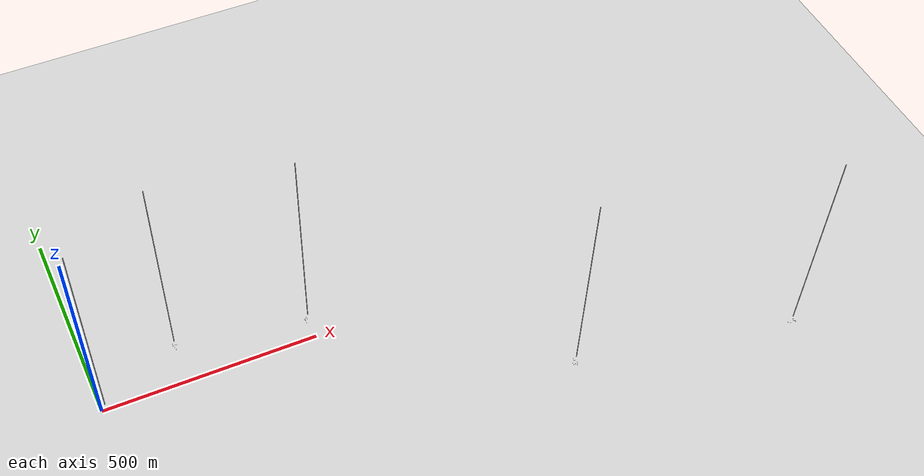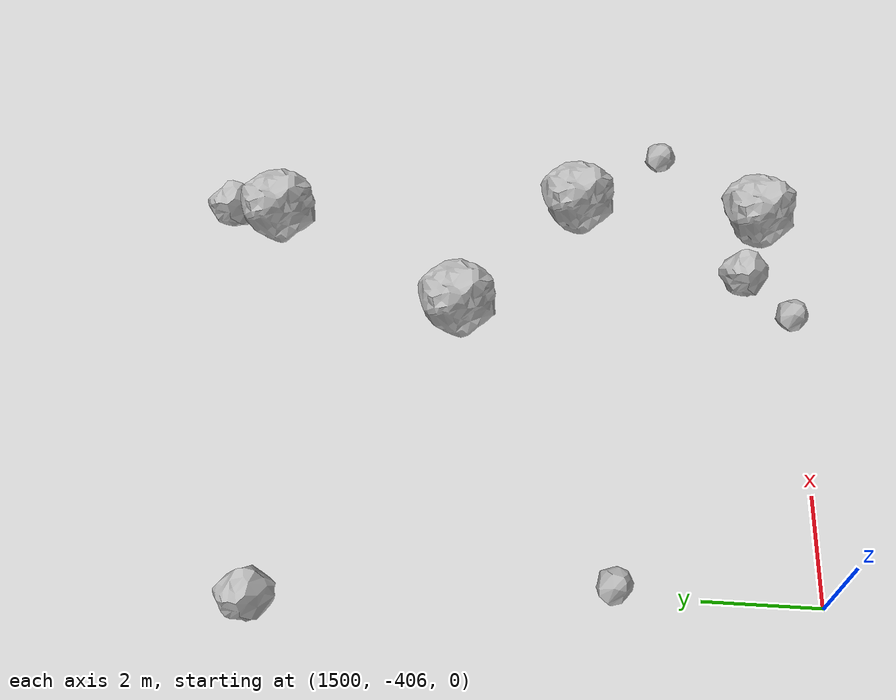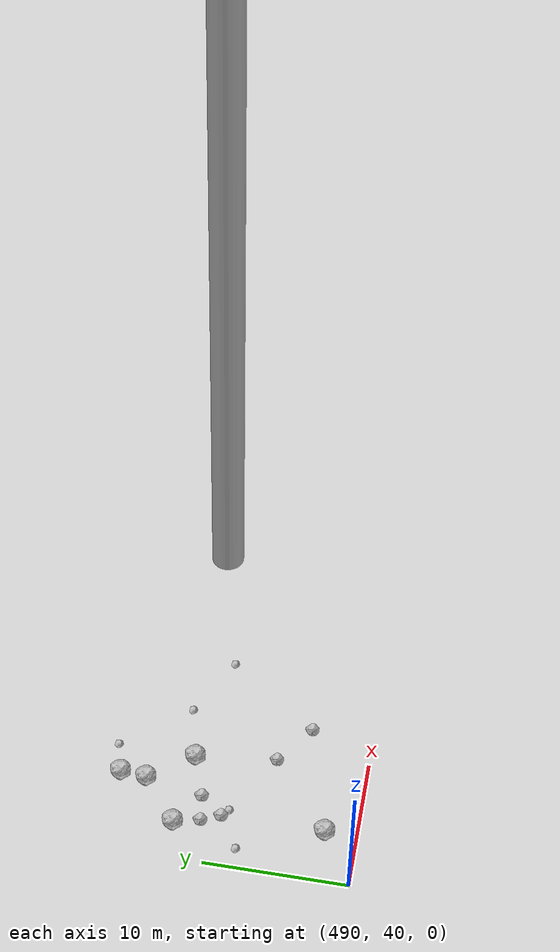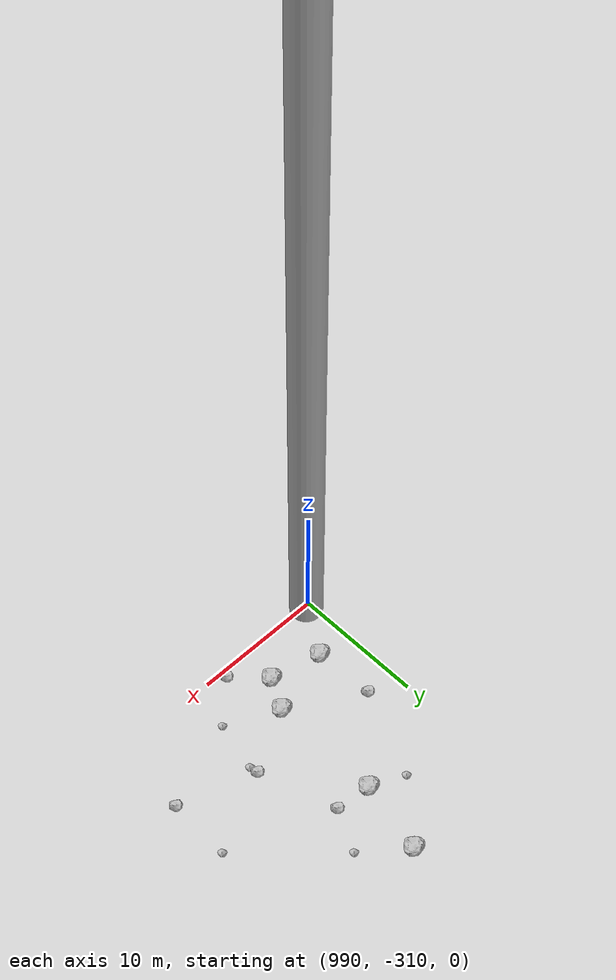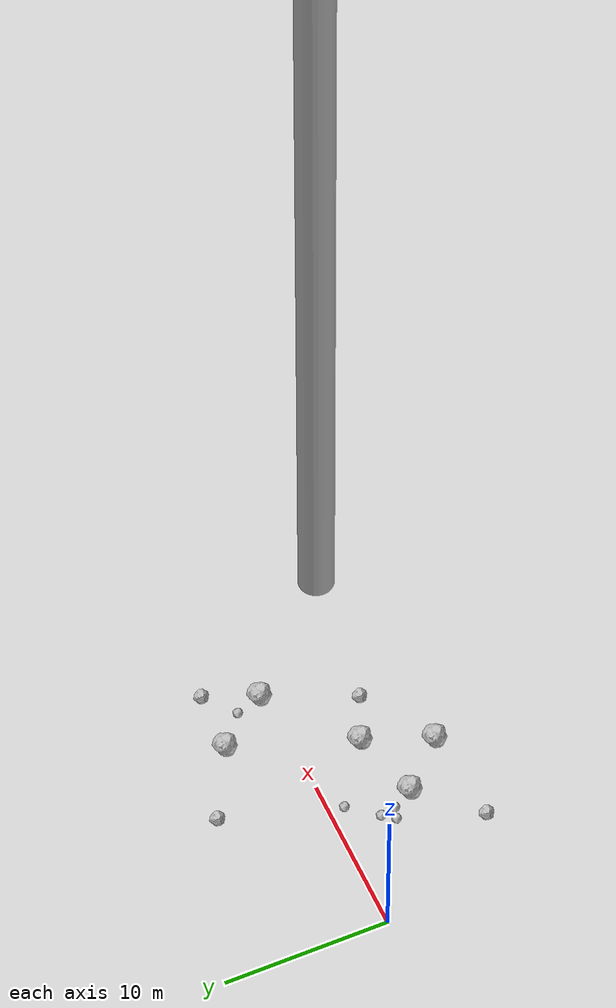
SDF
<?xml version="1.0" ?>
<sdf version="1.6">
  <world name="default">

    <include>
      <uri>model://custom_ground</uri>
    </include>

    <include>
      <uri>model://sun</uri>
    </include>

    <spherical_coordinates>
      <surface_model>EARTH_WGS84</surface_model>
      <latitude_deg>38.161479</latitude_deg>
      <longitude_deg>-122.454630</longitude_deg>
      <elevation>488.0</elevation>
      <heading_deg>90</heading_deg>
    </spherical_coordinates>

    <model name="rock1_0_0">
      <include>
        <uri>model://rock1</uri>
        <pose>14.70755801932712 3.8091425732119184 0.5 0 0 0</pose>
      </include>
    </model>
    <model name="rock1_0_1">
      <include>
        <uri>model://rock1</uri>
        <pose>10.337254770042204 -7.653851566704679 0.5 0 0 0</pose>
      </include>
    </model>
    <model name="rock1_0_2">
      <include>
        <uri>model://rock1</uri>
        <pose>7.618650321289402 -4.815803580699802 0.5 0 0 0</pose>
      </include>
    </model>
    <model name="rock1_0_3">
      <include>
        <uri>model://rock1</uri>
        <pose>11.980936104275987 -3.609219413386664 0.5 0 0 0</pose>
      </include>
    </model>
    <model name="rock1_0_4">
      <include>
        <uri>model://rock1</uri>
        <pose>17.212643084102194 0.544130621382358 0.5 0 0 0</pose>
      </include>
    </model>
    <model name="rock2_0_0">
      <include>
        <uri>model://rock2</uri>
        <pose>4.309904263498632 -8.19316649057254 0.3 0 0 0</pose>
      </include>
    </model>
    <model name="rock2_0_1">
      <include>
        <uri>model://rock2</uri>
        <pose>18.490045496614126 3.7022043395755944 0.3 0 0 0</pose>
      </include>
    </model>
    <model name="rock2_0_2">
      <include>
        <uri>model://rock2</uri>
        <pose>14.789887684826885 -4.863224375084581 0.3 0 0 0</pose>
      </include>
    </model>
    <model name="rock2_0_3">
      <include>
        <uri>model://rock2</uri>
        <pose>10.196598472394394 6.172609680712039 0.3 0 0 0</pose>
      </include>
    </model>
    <model name="rock2_0_4">
      <include>
        <uri>model://rock2</uri>
        <pose>11.7436264091927 -3.598741551258742 0.3 0 0 0</pose>
      </include>
    </model>
    <model name="rock3_0_0">
      <include>
        <uri>model://rock3</uri>
        <pose>8.026696254389417 -0.915626044016653 0.2 0 0 0</pose>
      </include>
    </model>
    <model name="rock3_0_1">
      <include>
        <uri>model://rock3</uri>
        <pose>6.6369576038531015 -2.621141762732659 0.2 0 0 0</pose>
      </include>
    </model>
    <model name="rock3_0_2">
      <include>
        <uri>model://rock3</uri>
        <pose>6.829324817239096 -3.569396654865762 0.2 0 0 0</pose>
      </include>
    </model>
    <model name="rock3_0_3">
      <include>
        <uri>model://rock3</uri>
        <pose>6.085887623721831 -3.3433666085121017 0.2 0 0 0</pose>
      </include>
    </model>
    <model name="rock3_0_4">
      <include>
        <uri>model://rock3</uri>
        <pose>16.588999274237274 2.1321068900792426 0.2 0 0 0</pose>
      </include>
    </model>
    <model name="rock1_1_0">
      <include>
        <uri>model://rock1</uri>
        <pose>201.12585132998097 104.91663074898004 0.5 0 0 0</pose>
      </include>
    </model>
    <model name="rock1_1_1">
      <include>
        <uri>model://rock1</uri>
        <pose>199.7579376995608 91.02876846333439 0.5 0 0 0</pose>
      </include>
    </model>
    <model name="rock1_1_2">
      <include>
        <uri>model://rock1</uri>
        <pose>195.86542682274637 108.9898010249355 0.5 0 0 0</pose>
      </include>
    </model>
    <model name="rock1_1_3">
      <include>
        <uri>model://rock1</uri>
        <pose>196.32182675490714 103.00338462638234 0.5 0 0 0</pose>
      </include>
    </model>
    <model name="rock1_1_4">
      <include>
        <uri>model://rock1</uri>
        <pose>204.7115503531407 102.81096096206007 0.5 0 0 0</pose>
      </include>
    </model>
    <model name="rock2_1_0">
      <include>
        <uri>model://rock2</uri>
        <pose>194.04553827649482 92.40044141392721 0.3 0 0 0</pose>
      </include>
    </model>
    <model name="rock2_1_1">
      <include>
        <uri>model://rock2</uri>
        <pose>208.10096811420715 102.7170532056624 0.3 0 0 0</pose>
      </include>
    </model>
    <model name="rock2_1_2">
      <include>
        <uri>model://rock2</uri>
        <pose>192.62812781187318 99.52710691624893 0.3 0 0 0</pose>
      </include>
    </model>
    <model name="rock2_1_3">
      <include>
        <uri>model://rock2</uri>
        <pose>206.38257117292756 103.10947840415804 0.3 0 0 0</pose>
      </include>
    </model>
    <model name="rock2_1_4">
      <include>
        <uri>model://rock2</uri>
        <pose>198.09768105834348 97.45673699578768 0.3 0 0 0</pose>
      </include>
    </model>
    <model name="rock3_1_0">
      <include>
        <uri>model://rock3</uri>
        <pose>197.90713922999026 100.47134822671569 0.2 0 0 0</pose>
      </include>
    </model>
    <model name="rock3_1_1">
      <include>
        <uri>model://rock3</uri>
        <pose>192.08821262753509 94.46775587064471 0.2 0 0 0</pose>
      </include>
    </model>
    <model name="rock3_1_2">
      <include>
        <uri>model://rock3</uri>
        <pose>202.11058448311024 93.77285669512901 0.2 0 0 0</pose>
      </include>
    </model>
    <model name="rock3_1_3">
      <include>
        <uri>model://rock3</uri>
        <pose>200.96646639206114 105.099721314162 0.2 0 0 0</pose>
      </include>
    </model>
    <model name="rock3_1_4">
      <include>
        <uri>model://rock3</uri>
        <pose>192.59181241156415 99.16575351397809 0.2 0 0 0</pose>
      </include>
    </model>
    <model name="rock1_2_0">
      <include>
        <uri>model://rock1</uri>
        <pose>493.8881057816534 42.254957727144294 0.5 0 0 0</pose>
      </include>
    </model>
    <model name="rock1_2_1">
      <include>
        <uri>model://rock1</uri>
        <pose>496.27111763299 56.99896995485666 0.5 0 0 0</pose>
      </include>
    </model>
    <model name="rock1_2_2">
      <include>
        <uri>model://rock1</uri>
        <pose>498.4486797993275 52.11094423904683 0.5 0 0 0</pose>
      </include>
    </model>
    <model name="rock1_2_3">
      <include>
        <uri>model://rock1</uri>
        <pose>492.83682114549435 52.60616172709681 0.5 0 0 0</pose>
      </include>
    </model>
    <model name="rock1_2_4">
      <include>
        <uri>model://rock1</uri>
        <pose>496.10195942080964 55.15913510817726 0.5 0 0 0</pose>
      </include>
    </model>
    <model name="rock2_2_0">
      <include>
        <uri>model://rock2</uri>
        <pose>493.27480854975477 50.77003122262893 0.3 0 0 0</pose>
      </include>
    </model>
    <model name="rock2_2_1">
      <include>
        <uri>model://rock2</uri>
        <pose>495.2452708104072 51.05161587853569 0.3 0 0 0</pose>
      </include>
    </model>
    <model name="rock2_2_2">
      <include>
        <uri>model://rock2</uri>
        <pose>499.1567230343637 46.427879548733 0.3 0 0 0</pose>
      </include>
    </model>
    <model name="rock2_2_3">
      <include>
        <uri>model://rock2</uri>
        <pose>493.87353459646647 49.44340142107852 0.3 0 0 0</pose>
      </include>
    </model>
    <model name="rock2_2_4">
      <include>
        <uri>model://rock2</uri>
        <pose>502.1530631482101 44.38317777722449 0.3 0 0 0</pose>
      </include>
    </model>
    <model name="rock3_2_0">
      <include>
        <uri>model://rock3</uri>
        <pose>498.53693748999956 57.61143850849387 0.2 0 0 0</pose>
      </include>
    </model>
    <model name="rock3_2_1">
      <include>
        <uri>model://rock3</uri>
        <pose>502.389550338556 53.02733819998522 0.2 0 0 0</pose>
      </include>
    </model>
    <model name="rock3_2_2">
      <include>
        <uri>model://rock3</uri>
        <pose>494.4175795480446 48.94780409993224 0.2 0 0 0</pose>
      </include>
    </model>
    <model name="rock3_2_3">
      <include>
        <uri>model://rock3</uri>
        <pose>507.02471676184496 50.81086705416004 0.2 0 0 0</pose>
      </include>
    </model>
    <model name="rock3_2_4">
      <include>
        <uri>model://rock3</uri>
        <pose>491.4354573927369 47.966663811681734 0.2 0 0 0</pose>
      </include>
    </model>
    <model name="rock1_3_0">
      <include>
        <uri>model://rock1</uri>
        <pose>998.8942944082884 -290.95177354942746 0.5 0 0 0</pose>
      </include>
    </model>
    <model name="rock1_3_1">
      <include>
        <uri>model://rock1</uri>
        <pose>997.7955916014664 -296.21218980639225 0.5 0 0 0</pose>
      </include>
    </model>
    <model name="rock1_3_2">
      <include>
        <uri>model://rock1</uri>
        <pose>992.6835504587866 -306.1332135488331 0.5 0 0 0</pose>
      </include>
    </model>
    <model name="rock1_3_3">
      <include>
        <uri>model://rock1</uri>
        <pose>997.7697882357011 -304.73780992451975 0.5 0 0 0</pose>
      </include>
    </model>
    <model name="rock1_3_4">
      <include>
        <uri>model://rock1</uri>
        <pose>996.5471716369573 -307.05786780839077 0.5 0 0 0</pose>
      </include>
    </model>
    <model name="rock2_3_0">
      <include>
        <uri>model://rock2</uri>
        <pose>992.3496133571552 -301.55881315013147 0.3 0 0 0</pose>
      </include>
    </model>
    <model name="rock2_3_1">
      <include>
        <uri>model://rock2</uri>
        <pose>998.6422159459995 -309.37780758795526 0.3 0 0 0</pose>
      </include>
    </model>
    <model name="rock2_3_2">
      <include>
        <uri>model://rock2</uri>
        <pose>1002.3370306265359 -302.29641045729926 0.3 0 0 0</pose>
      </include>
    </model>
    <model name="rock2_3_3">
      <include>
        <uri>model://rock2</uri>
        <pose>1000.3820838253408 -296.53528329360864 0.3 0 0 0</pose>
      </include>
    </model>
    <model name="rock2_3_4">
      <include>
        <uri>model://rock2</uri>
        <pose>1008.0536458855577 -304.2497092493897 0.3 0 0 0</pose>
      </include>
    </model>
    <model name="rock3_3_0">
      <include>
        <uri>model://rock3</uri>
        <pose>995.1870798119537 -295.1172683633079 0.2 0 0 0</pose>
      </include>
    </model>
    <model name="rock3_3_1">
      <include>
        <uri>model://rock3</uri>
        <pose>1001.5619402478087 -306.6917366669901 0.2 0 0 0</pose>
      </include>
    </model>
    <model name="rock3_3_2">
      <include>
        <uri>model://rock3</uri>
        <pose>1002.4223001661287 -302.98652605922723 0.2 0 0 0</pose>
      </include>
    </model>
    <model name="rock3_3_3">
      <include>
        <uri>model://rock3</uri>
        <pose>1008.1472535823648 -299.56154301628237 0.2 0 0 0</pose>
      </include>
    </model>
    <model name="rock3_3_4">
      <include>
        <uri>model://rock3</uri>
        <pose>1001.8820550489677 -293.50576591559303 0.2 0 0 0</pose>
      </include>
    </model>
    <model name="rock1_4_0">
      <include>
        <uri>model://rock1</uri>
        <pose>1507.9413856083727 -405.3550174509336 0.5 0 0 0</pose>
      </include>
    </model>
    <model name="rock1_4_1">
      <include>
        <uri>model://rock1</uri>
        <pose>1508.0781036391134 -401.76794391177265 0.5 0 0 0</pose>
      </include>
    </model>
    <model name="rock1_4_2">
      <include>
        <uri>model://rock1</uri>
        <pose>1505.5318441395639 -399.5466318234527 0.5 0 0 0</pose>
      </include>
    </model>
    <model name="rock1_4_3">
      <include>
        <uri>model://rock1</uri>
        <pose>1507.5307504067298 -395.83260456930907 0.5 0 0 0</pose>
      </include>
    </model>
    <model name="rock1_4_4">
      <include>
        <uri>model://rock1</uri>
        <pose>1496.2442981629727 -402.52734554013057 0.5 0 0 0</pose>
      </include>
    </model>
    <model name="rock2_4_0">
      <include>
        <uri>model://rock2</uri>
        <pose>1507.5787654093638 -394.8866269104592 0.3 0 0 0</pose>
      </include>
    </model>
    <model name="rock2_4_1">
      <include>
        <uri>model://rock2</uri>
        <pose>1490.990415586415 -399.08238692020507 0.3 0 0 0</pose>
      </include>
    </model>
    <model name="rock2_4_2">
      <include>
        <uri>model://rock2</uri>
        <pose>1499.6458812494968 -396.4893974139022 0.3 0 0 0</pose>
      </include>
    </model>
    <model name="rock2_4_3">
      <include>
        <uri>model://rock2</uri>
        <pose>1506.470367940416 -405.0178102421939 0.3 0 0 0</pose>
      </include>
    </model>
    <model name="rock2_4_4">
      <include>
        <uri>model://rock2</uri>
        <pose>1492.306042349563 -399.6496851692082 0.3 0 0 0</pose>
      </include>
    </model>
    <model name="rock3_4_0">
      <include>
        <uri>model://rock3</uri>
        <pose>1505.6108334429834 -405.9291122529492 0.2 0 0 0</pose>
      </include>
    </model>
    <model name="rock3_4_1">
      <include>
        <uri>model://rock3</uri>
        <pose>1490.6862059287475 -399.8901479913982 0.2 0 0 0</pose>
      </include>
    </model>
    <model name="rock3_4_2">
      <include>
        <uri>model://rock3</uri>
        <pose>1500.1346218245574 -402.5640126790346 0.2 0 0 0</pose>
      </include>
    </model>
    <model name="rock3_4_3">
      <include>
        <uri>model://rock3</uri>
        <pose>1509.3597866090574 -403.5031615312295 0.2 0 0 0</pose>
      </include>
    </model>
    <model name="rock3_4_4">
      <include>
        <uri>model://rock3</uri>
        <pose>1496.0948450056908 -397.6436122406725 0.2 0 0 0</pose>
      </include>
    </model>

    <model name="cylinder_1">
      <static>true</static>
      <link name="link">
        <visual name="visual">
          <geometry>
            <cylinder>
              <radius>1</radius>
              <length>500</length>
            </cylinder>
          </geometry>
        </visual>
      </link>
      <pose>10 0 270 0 0 0</pose>
    </model>

    <model name="cylinder_2">
      <static>true</static>
      <link name="link">
        <visual name="visual">
          <geometry>
            <cylinder>
              <radius>1</radius>
              <length>500</length>
            </cylinder>
          </geometry>
        </visual>
      </link>
      <pose>200 100 270 0 0 0</pose>
    </model>

    <model name="cylinder_3">
      <static>true</static>
      <link name="link">
        <visual name="visual">
          <geometry>
            <cylinder>
              <radius>1</radius>
              <length>500</length>
            </cylinder>
          </geometry>
        </visual>
      </link>
      <pose>500 50 270 0 0 0</pose>
    </model>

    <model name="cylinder_4">
      <static>true</static>
      <link name="link">
        <visual name="visual">
          <geometry>
            <cylinder>
              <radius>1</radius>
              <length>500</length>
            </cylinder>
          </geometry>
        </visual>
      </link>
      <pose>1000 -300 270 0 0 0</pose>
    </model>

    <model name="cylinder_5">
      <static>true</static>
      <link name="link">
        <visual name="visual">
          <geometry>
            <cylinder>
              <radius>1</radius>
              <length>500</length>
            </cylinder>
          </geometry>
        </visual>
      </link>
      <pose>1500 -400 270 0 0 0</pose>
    </model>

  </world>
</sdf>

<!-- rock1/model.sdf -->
<sdf version="1.6">
  <model name="rock1">
    <static>true</static> <!-- Set to true if the model should not move -->
    <pose>0 0 0 0 0 0</pose>

    <!--z offset is 0.5 for full scale-->

    <link name="link">
      <collision name="rock1_collision">
        <geometry>
          <mesh>
            <uri>model://meshes/rock1.dae</uri>
          </mesh>
        </geometry>
      </collision>
      <visual name="rock1_visual">
        <geometry>
          <mesh>
            <uri>model://meshes/rock1.dae</uri>
          </mesh>
        </geometry>
        <material>
          <script>
            <uri>model://materials/scripts/sand_pebbles.material</uri>
            <name>custom_ground/Image</name>
          </script>
        </material>
      </visual>
    </link>
  </model>
</sdf>

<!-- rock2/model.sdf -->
<sdf version="1.6">
  <model name="rock2">
    <static>true</static> <!-- Set to true if the model should not move -->
    <pose>0 0 0 0 0 0</pose>

    <!--z offset is 0.3 for full scale-->

    <link name="link">
      <collision name="rock2_collision">
        <geometry>
          <mesh>
            <uri>model://meshes/rock2.dae</uri>
          </mesh>
        </geometry>
      </collision>
      <visual name="rock2_visual">
        <geometry>
          <mesh>
            <uri>model://meshes/rock2.dae</uri>
          </mesh>
        </geometry>
        <material>
          <script>
            <uri>model://materials/scripts/sand_pebbles.material</uri>
            <name>custom_ground/Image</name>
          </script>
        </material>
      </visual>
    </link>
  </model>
</sdf>

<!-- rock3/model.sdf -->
<sdf version="1.6">
  <model name="rock3">
    <static>true</static> <!-- Set to true if the model should not move -->
    <pose>0 0 0 0 0 0</pose>

    <!--z offset is 0.2 for full scale-->

    <link name="link">
      <collision name="rock3_collision">
        <geometry>
          <mesh>
            <uri>model://meshes/rock3.dae</uri>
          </mesh>
        </geometry>
      </collision>
      <visual name="rock3_visual">
        <geometry>
          <mesh>
            <uri>model://meshes/rock3.dae</uri>
          </mesh>
        </geometry>
        <material>
          <script>
            <uri>model://materials/scripts/sand_pebbles.material</uri>
            <name>custom_ground/Image</name>
          </script>
        </material>
      </visual>
    </link>
  </model>
</sdf>

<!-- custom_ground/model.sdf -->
<sdf version="1.6">
  <model name="custom_ground">
    <static>true</static> <!-- Ground is static and immovable -->
    <link name="ground_link">
      <pose>240 0 0 0 0 0</pose> <!-- Position and orientation relative to the world -->
      <!-- Visual Representation -->
      <visual name="ground_visual">
        <geometry>
          <plane>
            <normal>0 0 1</normal> <!-- Upward facing plane -->
            <size>500 500</size> <!-- Size of the plane -->
          </plane>
        </geometry>
        <material>
          <script>
            <uri>model://materials/scripts/sand_pebbles.material</uri>
            <name>custom_ground/Image</name>
          </script>
        </material>
      </visual>

      <!-- Collision Representation -->
      <collision name="ground_collision">
        <geometry>
          <plane>
            <normal>0 0 1</normal>
            <size>100 100</size>
          </plane>
        </geometry>
      </collision>

    </link>
  </model>
</sdf>
